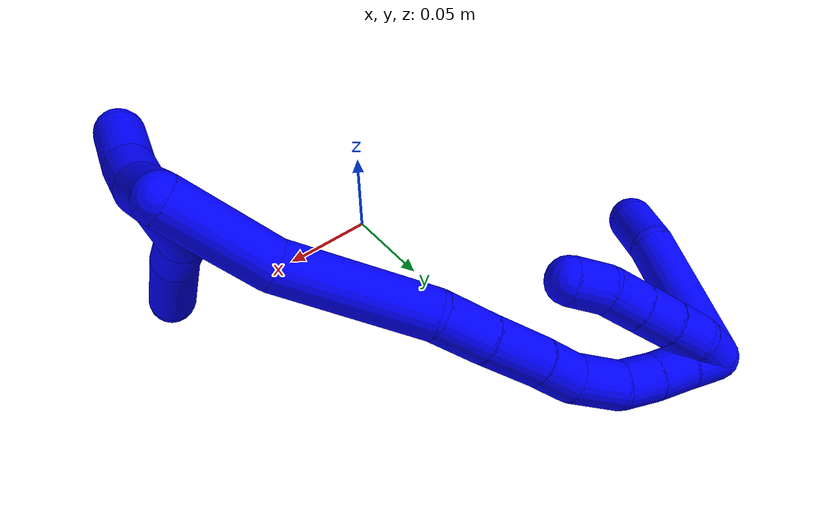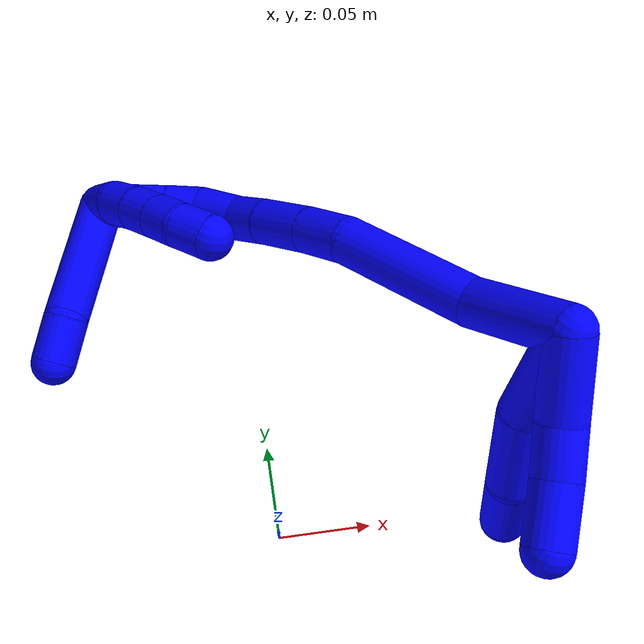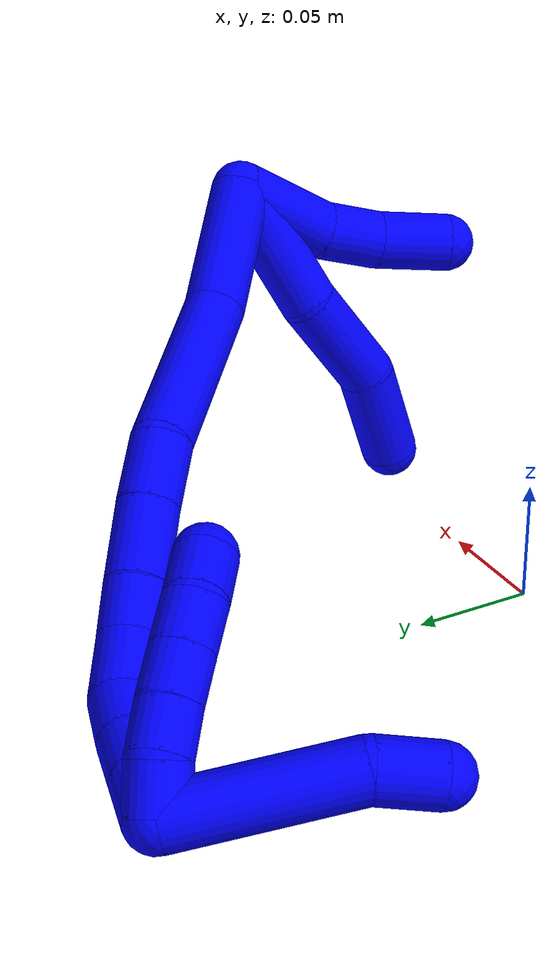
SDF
<sdf version="1.7">
 <world name="default">
  <model name="1">
   <static>0</static>
   <link name="1">
    <collision name="collision-cylinder-e_1_2_8">
     <pose>0.001882 0.003554 -0.028335 -3.01681 0.065812 -0.969933</pose>
     <geometry><cylinder><radius>0.0125</radius><length>0.057239</length></cylinder></geometry>
     <surface>
      <friction><ode><mu>1.16</mu><mu2>1.16</mu2><slip1>0</slip1><slip2>0</slip2></ode></friction>
      <contact><ode><kp>1e+06</kp><kd>1</kd><max_vel>0</max_vel><min_depth>0.001</min_depth></ode></contact>
     </surface>
    </collision>
    <visual name="visual-cylinder-e_1_2_8">
     <pose>0.001882 0.003554 -0.028335 -3.01681 0.065812 -0.969933</pose>
     <geometry><cylinder><radius>0.0125</radius><length>0.057239</length></cylinder></geometry>
     <material><ambient>0 0 1 1</ambient></material>
    </visual>
    <collision name="collision-cylinder-e_2_8_9">
     <pose>0.009485 0.005816 -0.079765 3.08572 0.242459 2.69062</pose>
     <geometry><cylinder><radius>0.0125</radius><length>0.047654</length></cylinder></geometry>
     <surface>
      <friction><ode><mu>1.16</mu><mu2>1.16</mu2><slip1>0</slip1><slip2>0</slip2></ode></friction>
      <contact><ode><kp>1e+06</kp><kd>1</kd><max_vel>0</max_vel><min_depth>0.001</min_depth></ode></contact>
     </surface>
    </collision>
    <visual name="visual-cylinder-e_2_8_9">
     <pose>0.009485 0.005816 -0.079765 3.08572 0.242459 2.69062</pose>
     <geometry><cylinder><radius>0.0125</radius><length>0.047654</length></cylinder></geometry>
     <material><ambient>0 0 1 1</ambient></material>
    </visual>
    <collision name="collision-cylinder-e_3_9_6">
     <pose>0.023561 0.009497 -0.123209 -2.90194 0.379489 -2.02164</pose>
     <geometry><cylinder><radius>0.0125</radius><length>0.045107</length></cylinder></geometry>
     <surface>
      <friction><ode><mu>1.16</mu><mu2>1.16</mu2><slip1>0</slip1><slip2>0</slip2></ode></friction>
      <contact><ode><kp>1e+06</kp><kd>1</kd><max_vel>0</max_vel><min_depth>0.001</min_depth></ode></contact>
     </surface>
    </collision>
    <visual name="visual-cylinder-e_3_9_6">
     <pose>0.023561 0.009497 -0.123209 -2.90194 0.379489 -2.02164</pose>
     <geometry><cylinder><radius>0.0125</radius><length>0.045107</length></cylinder></geometry>
     <material><ambient>0 0 1 1</ambient></material>
    </visual>
    <collision name="collision-cylinder-e_1_2_10">
     <pose>0.002536 -0.00901 -0.019284 2.70452 0.118575 0.522337</pose>
     <geometry><cylinder><radius>0.0125</radius><length>0.042871</length></cylinder></geometry>
     <surface>
      <friction><ode><mu>1.16</mu><mu2>1.16</mu2><slip1>0</slip1><slip2>0</slip2></ode></friction>
      <contact><ode><kp>1e+06</kp><kd>1</kd><max_vel>0</max_vel><min_depth>0.001</min_depth></ode></contact>
     </surface>
    </collision>
    <visual name="visual-cylinder-e_1_2_10">
     <pose>0.002536 -0.00901 -0.019284 2.70452 0.118575 0.522337</pose>
     <geometry><cylinder><radius>0.0125</radius><length>0.042871</length></cylinder></geometry>
     <material><ambient>0 0 1 1</ambient></material>
    </visual>
    <collision name="collision-cylinder-e_2_10_11">
     <pose>0.004616 -0.026137 -0.048638 2.46319 -0.035195 -0.099675</pose>
     <geometry><cylinder><radius>0.0125</radius><length>0.025886</length></cylinder></geometry>
     <surface>
      <friction><ode><mu>1.16</mu><mu2>1.16</mu2><slip1>0</slip1><slip2>0</slip2></ode></friction>
      <contact><ode><kp>1e+06</kp><kd>1</kd><max_vel>0</max_vel><min_depth>0.001</min_depth></ode></contact>
     </surface>
    </collision>
    <visual name="visual-cylinder-e_2_10_11">
     <pose>0.004616 -0.026137 -0.048638 2.46319 -0.035195 -0.099675</pose>
     <geometry><cylinder><radius>0.0125</radius><length>0.025886</length></cylinder></geometry>
     <material><ambient>0 0 1 1</ambient></material>
    </visual>
    <collision name="collision-cylinder-e_3_11_5">
     <pose>0.001572 -0.045377 -0.069368 2.33486 -0.166474 -0.386117</pose>
     <geometry><cylinder><radius>0.0125</radius><length>0.031244</length></cylinder></geometry>
     <surface>
      <friction><ode><mu>1.16</mu><mu2>1.16</mu2><slip1>0</slip1><slip2>0</slip2></ode></friction>
      <contact><ode><kp>1e+06</kp><kd>1</kd><max_vel>0</max_vel><min_depth>0.001</min_depth></ode></contact>
     </surface>
    </collision>
    <visual name="visual-cylinder-e_3_11_5">
     <pose>0.001572 -0.045377 -0.069368 2.33486 -0.166474 -0.386117</pose>
     <geometry><cylinder><radius>0.0125</radius><length>0.031244</length></cylinder></geometry>
     <material><ambient>0 0 1 1</ambient></material>
    </visual>
    <collision name="collision-cylinder-e_1_2_12">
     <pose>-0.010447 0.023293 -0.011432 -2.02704 -0.382771 0.6029</pose>
     <geometry><cylinder><radius>0.0125</radius><length>0.055943</length></cylinder></geometry>
     <surface>
      <friction><ode><mu>1.16</mu><mu2>1.16</mu2><slip1>0</slip1><slip2>0</slip2></ode></friction>
      <contact><ode><kp>1e+06</kp><kd>1</kd><max_vel>0</max_vel><min_depth>0.001</min_depth></ode></contact>
     </surface>
    </collision>
    <visual name="visual-cylinder-e_1_2_12">
     <pose>-0.010447 0.023293 -0.011432 -2.02704 -0.382771 0.6029</pose>
     <geometry><cylinder><radius>0.0125</radius><length>0.055943</length></cylinder></geometry>
     <material><ambient>0 0 1 1</ambient></material>
    </visual>
    <collision name="collision-cylinder-e_2_12_13">
     <pose>-0.042959 0.076684 -0.0282 -1.74626 -0.625224 0.735979</pose>
     <geometry><cylinder><radius>0.0125</radius><length>0.075398</length></cylinder></geometry>
     <surface>
      <friction><ode><mu>1.16</mu><mu2>1.16</mu2><slip1>0</slip1><slip2>0</slip2></ode></friction>
      <contact><ode><kp>1e+06</kp><kd>1</kd><max_vel>0</max_vel><min_depth>0.001</min_depth></ode></contact>
     </surface>
    </collision>
    <visual name="visual-cylinder-e_2_12_13">
     <pose>-0.042959 0.076684 -0.0282 -1.74626 -0.625224 0.735979</pose>
     <geometry><cylinder><radius>0.0125</radius><length>0.075398</length></cylinder></geometry>
     <material><ambient>0 0 1 1</ambient></material>
    </visual>
    <collision name="collision-cylinder-e_3_13_14">
     <pose>-0.071386 0.118078 -0.038792 -2.00635 -0.472196 0.721601</pose>
     <geometry><cylinder><radius>0.0125</radius><length>0.02798</length></cylinder></geometry>
     <surface>
      <friction><ode><mu>1.16</mu><mu2>1.16</mu2><slip1>0</slip1><slip2>0</slip2></ode></friction>
      <contact><ode><kp>1e+06</kp><kd>1</kd><max_vel>0</max_vel><min_depth>0.001</min_depth></ode></contact>
     </surface>
    </collision>
    <visual name="visual-cylinder-e_3_13_14">
     <pose>-0.071386 0.118078 -0.038792 -2.00635 -0.472196 0.721601</pose>
     <geometry><cylinder><radius>0.0125</radius><length>0.02798</length></cylinder></geometry>
     <material><ambient>0 0 1 1</ambient></material>
    </visual>
    <collision name="collision-cylinder-e_4_14_15">
     <pose>-0.085334 0.141706 -0.050606 -2.05947 -0.497488 0.799888</pose>
     <geometry><cylinder><radius>0.0125</radius><length>0.031787</length></cylinder></geometry>
     <surface>
      <friction><ode><mu>1.16</mu><mu2>1.16</mu2><slip1>0</slip1><slip2>0</slip2></ode></friction>
      <contact><ode><kp>1e+06</kp><kd>1</kd><max_vel>0</max_vel><min_depth>0.001</min_depth></ode></contact>
     </surface>
    </collision>
    <visual name="visual-cylinder-e_4_14_15">
     <pose>-0.085334 0.141706 -0.050606 -2.05947 -0.497488 0.799888</pose>
     <geometry><cylinder><radius>0.0125</radius><length>0.031787</length></cylinder></geometry>
     <material><ambient>0 0 1 1</ambient></material>
    </visual>
    <collision name="collision-cylinder-e_5_15_16">
     <pose>-0.097628 0.162544 -0.062297 -2.11385 -0.442676 0.7587</pose>
     <geometry><cylinder><radius>0.0125</radius><length>0.02199</length></cylinder></geometry>
     <surface>
      <friction><ode><mu>1.16</mu><mu2>1.16</mu2><slip1>0</slip1><slip2>0</slip2></ode></friction>
      <contact><ode><kp>1e+06</kp><kd>1</kd><max_vel>0</max_vel><min_depth>0.001</min_depth></ode></contact>
     </surface>
    </collision>
    <visual name="visual-cylinder-e_5_15_16">
     <pose>-0.097628 0.162544 -0.062297 -2.11385 -0.442676 0.7587</pose>
     <geometry><cylinder><radius>0.0125</radius><length>0.02199</length></cylinder></geometry>
     <material><ambient>0 0 1 1</ambient></material>
    </visual>
    <collision name="collision-cylinder-e_6_16_17">
     <pose>-0.111158 0.180295 -0.071188 -1.95685 -0.7238 1.02481</pose>
     <geometry><cylinder><radius>0.0125</radius><length>0.026636</length></cylinder></geometry>
     <surface>
      <friction><ode><mu>1.16</mu><mu2>1.16</mu2><slip1>0</slip1><slip2>0</slip2></ode></friction>
      <contact><ode><kp>1e+06</kp><kd>1</kd><max_vel>0</max_vel><min_depth>0.001</min_depth></ode></contact>
     </surface>
    </collision>
    <visual name="visual-cylinder-e_6_16_17">
     <pose>-0.111158 0.180295 -0.071188 -1.95685 -0.7238 1.02481</pose>
     <geometry><cylinder><radius>0.0125</radius><length>0.026636</length></cylinder></geometry>
     <material><ambient>0 0 1 1</ambient></material>
    </visual>
    <collision name="collision-cylinder-e_7_17_18">
     <pose>-0.128654 0.193685 -0.077929 -2.19457 -1.03877 1.68018</pose>
     <geometry><cylinder><radius>0.0125</radius><length>0.020136</length></cylinder></geometry>
     <surface>
      <friction><ode><mu>1.16</mu><mu2>1.16</mu2><slip1>0</slip1><slip2>0</slip2></ode></friction>
      <contact><ode><kp>1e+06</kp><kd>1</kd><max_vel>0</max_vel><min_depth>0.001</min_depth></ode></contact>
     </surface>
    </collision>
    <visual name="visual-cylinder-e_7_17_18">
     <pose>-0.128654 0.193685 -0.077929 -2.19457 -1.03877 1.68018</pose>
     <geometry><cylinder><radius>0.0125</radius><length>0.020136</length></cylinder></geometry>
     <material><ambient>0 0 1 1</ambient></material>
    </visual>
    <collision name="collision-cylinder-e_8_18_19">
     <pose>-0.14637 0.201196 -0.083665 -2.25642 -1.12242 1.84957</pose>
     <geometry><cylinder><radius>0.0125</radius><length>0.020062</length></cylinder></geometry>
     <surface>
      <friction><ode><mu>1.16</mu><mu2>1.16</mu2><slip1>0</slip1><slip2>0</slip2></ode></friction>
      <contact><ode><kp>1e+06</kp><kd>1</kd><max_vel>0</max_vel><min_depth>0.001</min_depth></ode></contact>
     </surface>
    </collision>
    <visual name="visual-cylinder-e_8_18_19">
     <pose>-0.14637 0.201196 -0.083665 -2.25642 -1.12242 1.84957</pose>
     <geometry><cylinder><radius>0.0125</radius><length>0.020062</length></cylinder></geometry>
     <material><ambient>0 0 1 1</ambient></material>
    </visual>
    <collision name="collision-cylinder-e_9_19_1">
     <pose>-0.164157 0.20815 -0.089779 -2.32341 -1.05882 1.86622</pose>
     <geometry><cylinder><radius>0.0125</radius><length>0.020069</length></cylinder></geometry>
     <surface>
      <friction><ode><mu>1.16</mu><mu2>1.16</mu2><slip1>0</slip1><slip2>0</slip2></ode></friction>
      <contact><ode><kp>1e+06</kp><kd>1</kd><max_vel>0</max_vel><min_depth>0.001</min_depth></ode></contact>
     </surface>
    </collision>
    <visual name="visual-cylinder-e_9_19_1">
     <pose>-0.164157 0.20815 -0.089779 -2.32341 -1.05882 1.86622</pose>
     <geometry><cylinder><radius>0.0125</radius><length>0.020069</length></cylinder></geometry>
     <material><ambient>0 0 1 1</ambient></material>
    </visual>
    <collision name="collision-cylinder-e_1_1_20">
     <pose>-0.170291 0.204403 -0.086865 0.863218 0.264461 0.122365</pose>
     <geometry><cylinder><radius>0.0125</radius><length>0.02</length></cylinder></geometry>
     <surface>
      <friction><ode><mu>1.16</mu><mu2>1.16</mu2><slip1>0</slip1><slip2>0</slip2></ode></friction>
      <contact><ode><kp>1e+06</kp><kd>1</kd><max_vel>0</max_vel><min_depth>0.001</min_depth></ode></contact>
     </surface>
    </collision>
    <visual name="visual-cylinder-e_1_1_20">
     <pose>-0.170291 0.204403 -0.086865 0.863218 0.264461 0.122365</pose>
     <geometry><cylinder><radius>0.0125</radius><length>0.02</length></cylinder></geometry>
     <material><ambient>0 0 1 1</ambient></material>
    </visual>
    <collision name="collision-cylinder-e_2_20_21">
     <pose>-0.16324 0.189011 -0.076668 1.11764 0.459705 0.290567</pose>
     <geometry><cylinder><radius>0.0125</radius><length>0.02</length></cylinder></geometry>
     <surface>
      <friction><ode><mu>1.16</mu><mu2>1.16</mu2><slip1>0</slip1><slip2>0</slip2></ode></friction>
      <contact><ode><kp>1e+06</kp><kd>1</kd><max_vel>0</max_vel><min_depth>0.001</min_depth></ode></contact>
     </surface>
    </collision>
    <visual name="visual-cylinder-e_2_20_21">
     <pose>-0.16324 0.189011 -0.076668 1.11764 0.459705 0.290567</pose>
     <geometry><cylinder><radius>0.0125</radius><length>0.02</length></cylinder></geometry>
     <material><ambient>0 0 1 1</ambient></material>
    </visual>
    <collision name="collision-cylinder-e_3_21_22">
     <pose>-0.154304 0.172658 -0.069436 1.1913 0.466665 0.319416</pose>
     <geometry><cylinder><radius>0.0125</radius><length>0.02</length></cylinder></geometry>
     <surface>
      <friction><ode><mu>1.16</mu><mu2>1.16</mu2><slip1>0</slip1><slip2>0</slip2></ode></friction>
      <contact><ode><kp>1e+06</kp><kd>1</kd><max_vel>0</max_vel><min_depth>0.001</min_depth></ode></contact>
     </surface>
    </collision>
    <visual name="visual-cylinder-e_3_21_22">
     <pose>-0.154304 0.172658 -0.069436 1.1913 0.466665 0.319416</pose>
     <geometry><cylinder><radius>0.0125</radius><length>0.02</length></cylinder></geometry>
     <material><ambient>0 0 1 1</ambient></material>
    </visual>
    <collision name="collision-cylinder-e_4_22_23">
     <pose>-0.145328 0.156012 -0.062929 1.20508 0.464161 0.322321</pose>
     <geometry><cylinder><radius>0.0125</radius><length>0.02</length></cylinder></geometry>
     <surface>
      <friction><ode><mu>1.16</mu><mu2>1.16</mu2><slip1>0</slip1><slip2>0</slip2></ode></friction>
      <contact><ode><kp>1e+06</kp><kd>1</kd><max_vel>0</max_vel><min_depth>0.001</min_depth></ode></contact>
     </surface>
    </collision>
    <visual name="visual-cylinder-e_4_22_23">
     <pose>-0.145328 0.156012 -0.062929 1.20508 0.464161 0.322321</pose>
     <geometry><cylinder><radius>0.0125</radius><length>0.02</length></cylinder></geometry>
     <material><ambient>0 0 1 1</ambient></material>
    </visual>
    <collision name="collision-cylinder-e_5_23_4">
     <pose>-0.134437 0.140266 -0.057691 1.30161 0.696417 0.539361</pose>
     <geometry><cylinder><radius>0.0125</radius><length>0.02</length></cylinder></geometry>
     <surface>
      <friction><ode><mu>1.16</mu><mu2>1.16</mu2><slip1>0</slip1><slip2>0</slip2></ode></friction>
      <contact><ode><kp>1e+06</kp><kd>1</kd><max_vel>0</max_vel><min_depth>0.001</min_depth></ode></contact>
     </surface>
    </collision>
    <visual name="visual-cylinder-e_5_23_4">
     <pose>-0.134437 0.140266 -0.057691 1.30161 0.696417 0.539361</pose>
     <geometry><cylinder><radius>0.0125</radius><length>0.02</length></cylinder></geometry>
     <material><ambient>0 0 1 1</ambient></material>
    </visual>
    <collision name="collision-cylinder-e_1_1_24">
     <pose>-0.183269 0.180701 -0.110428 2.07902 -0.283854 -0.477047</pose>
     <geometry><cylinder><radius>0.0125</radius><length>0.074017</length></cylinder></geometry>
     <surface>
      <friction><ode><mu>1.16</mu><mu2>1.16</mu2><slip1>0</slip1><slip2>0</slip2></ode></friction>
      <contact><ode><kp>1e+06</kp><kd>1</kd><max_vel>0</max_vel><min_depth>0.001</min_depth></ode></contact>
     </surface>
    </collision>
    <visual name="visual-cylinder-e_1_1_24">
     <pose>-0.183269 0.180701 -0.110428 2.07902 -0.283854 -0.477047</pose>
     <geometry><cylinder><radius>0.0125</radius><length>0.074017</length></cylinder></geometry>
     <material><ambient>0 0 1 1</ambient></material>
    </visual>
    <collision name="collision-cylinder-e_2_24_3">
     <pose>-0.196634 0.141361 -0.137247 2.42493 -0.23301 -0.605792</pose>
     <geometry><cylinder><radius>0.0125</radius><length>0.025983</length></cylinder></geometry>
     <surface>
      <friction><ode><mu>1.16</mu><mu2>1.16</mu2><slip1>0</slip1><slip2>0</slip2></ode></friction>
      <contact><ode><kp>1e+06</kp><kd>1</kd><max_vel>0</max_vel><min_depth>0.001</min_depth></ode></contact>
     </surface>
    </collision>
    <visual name="visual-cylinder-e_2_24_3">
     <pose>-0.196634 0.141361 -0.137247 2.42493 -0.23301 -0.605792</pose>
     <geometry><cylinder><radius>0.0125</radius><length>0.025983</length></cylinder></geometry>
     <material><ambient>0 0 1 1</ambient></material>
    </visual>
    <collision name="collision-sphere-3">
     <pose>-0.199634 0.133058 -0.146778 0 -0 0</pose>
     <geometry><sphere><radius>0.0125</radius></sphere></geometry>
     <surface>
      <friction><ode><mu>1.16</mu><mu2>1.16</mu2><slip1>0</slip1><slip2>0</slip2></ode></friction>
      <contact><ode><kp>1e+06</kp><kd>1</kd><max_vel>0</max_vel><min_depth>0.001</min_depth></ode></contact>
     </surface>
    </collision>
    <visual name="visual-sphere-3">
     <pose>-0.199634 0.133058 -0.146778 0 -0 0</pose>
     <geometry><sphere><radius>0.0125</radius></sphere></geometry>
     <material><ambient>0 0 1 1</ambient></material>
    </visual>
    <collision name="collision-sphere-24">
     <pose>-0.193634 0.149664 -0.127716 0 -0 0</pose>
     <geometry><sphere><radius>0.0125</radius></sphere></geometry>
     <surface>
      <friction><ode><mu>1.16</mu><mu2>1.16</mu2><slip1>0</slip1><slip2>0</slip2></ode></friction>
      <contact><ode><kp>1e+06</kp><kd>1</kd><max_vel>0</max_vel><min_depth>0.001</min_depth></ode></contact>
     </surface>
    </collision>
    <visual name="visual-sphere-24">
     <pose>-0.193634 0.149664 -0.127716 0 -0 0</pose>
     <geometry><sphere><radius>0.0125</radius></sphere></geometry>
     <material><ambient>0 0 1 1</ambient></material>
    </visual>
    <collision name="collision-sphere-4">
     <pose>-0.128022 0.132871 -0.055651 0 -0 0</pose>
     <geometry><sphere><radius>0.0125</radius></sphere></geometry>
     <surface>
      <friction><ode><mu>1.16</mu><mu2>1.16</mu2><slip1>0</slip1><slip2>0</slip2></ode></friction>
      <contact><ode><kp>1e+06</kp><kd>1</kd><max_vel>0</max_vel><min_depth>0.001</min_depth></ode></contact>
     </surface>
    </collision>
    <visual name="visual-sphere-4">
     <pose>-0.128022 0.132871 -0.055651 0 -0 0</pose>
     <geometry><sphere><radius>0.0125</radius></sphere></geometry>
     <material><ambient>0 0 1 1</ambient></material>
    </visual>
    <collision name="collision-sphere-23">
     <pose>-0.140852 0.147661 -0.059732 0 -0 0</pose>
     <geometry><sphere><radius>0.0125</radius></sphere></geometry>
     <surface>
      <friction><ode><mu>1.16</mu><mu2>1.16</mu2><slip1>0</slip1><slip2>0</slip2></ode></friction>
      <contact><ode><kp>1e+06</kp><kd>1</kd><max_vel>0</max_vel><min_depth>0.001</min_depth></ode></contact>
     </surface>
    </collision>
    <visual name="visual-sphere-23">
     <pose>-0.140852 0.147661 -0.059732 0 -0 0</pose>
     <geometry><sphere><radius>0.0125</radius></sphere></geometry>
     <material><ambient>0 0 1 1</ambient></material>
    </visual>
    <collision name="collision-sphere-22">
     <pose>-0.149805 0.164363 -0.066127 0 -0 0</pose>
     <geometry><sphere><radius>0.0125</radius></sphere></geometry>
     <surface>
      <friction><ode><mu>1.16</mu><mu2>1.16</mu2><slip1>0</slip1><slip2>0</slip2></ode></friction>
      <contact><ode><kp>1e+06</kp><kd>1</kd><max_vel>0</max_vel><min_depth>0.001</min_depth></ode></contact>
     </surface>
    </collision>
    <visual name="visual-sphere-22">
     <pose>-0.149805 0.164363 -0.066127 0 -0 0</pose>
     <geometry><sphere><radius>0.0125</radius></sphere></geometry>
     <material><ambient>0 0 1 1</ambient></material>
    </visual>
    <collision name="collision-sphere-21">
     <pose>-0.158803 0.180953 -0.072744 0 -0 0</pose>
     <geometry><sphere><radius>0.0125</radius></sphere></geometry>
     <surface>
      <friction><ode><mu>1.16</mu><mu2>1.16</mu2><slip1>0</slip1><slip2>0</slip2></ode></friction>
      <contact><ode><kp>1e+06</kp><kd>1</kd><max_vel>0</max_vel><min_depth>0.001</min_depth></ode></contact>
     </surface>
    </collision>
    <visual name="visual-sphere-21">
     <pose>-0.158803 0.180953 -0.072744 0 -0 0</pose>
     <geometry><sphere><radius>0.0125</radius></sphere></geometry>
     <material><ambient>0 0 1 1</ambient></material>
    </visual>
    <collision name="collision-sphere-20">
     <pose>-0.167677 0.197068 -0.080591 0 -0 0</pose>
     <geometry><sphere><radius>0.0125</radius></sphere></geometry>
     <surface>
      <friction><ode><mu>1.16</mu><mu2>1.16</mu2><slip1>0</slip1><slip2>0</slip2></ode></friction>
      <contact><ode><kp>1e+06</kp><kd>1</kd><max_vel>0</max_vel><min_depth>0.001</min_depth></ode></contact>
     </surface>
    </collision>
    <visual name="visual-sphere-20">
     <pose>-0.167677 0.197068 -0.080591 0 -0 0</pose>
     <geometry><sphere><radius>0.0125</radius></sphere></geometry>
     <material><ambient>0 0 1 1</ambient></material>
    </visual>
    <collision name="collision-sphere-11">
     <pose>0.004161 -0.034254 -0.058709 0 -0 0</pose>
     <geometry><sphere><radius>0.0125</radius></sphere></geometry>
     <surface>
      <friction><ode><mu>1.16</mu><mu2>1.16</mu2><slip1>0</slip1><slip2>0</slip2></ode></friction>
      <contact><ode><kp>1e+06</kp><kd>1</kd><max_vel>0</max_vel><min_depth>0.001</min_depth></ode></contact>
     </surface>
    </collision>
    <visual name="visual-sphere-11">
     <pose>0.004161 -0.034254 -0.058709 0 -0 0</pose>
     <geometry><sphere><radius>0.0125</radius></sphere></geometry>
     <material><ambient>0 0 1 1</ambient></material>
    </visual>
    <collision name="collision-sphere-10">
     <pose>0.005071 -0.018019 -0.038568 0 -0 0</pose>
     <geometry><sphere><radius>0.0125</radius></sphere></geometry>
     <surface>
      <friction><ode><mu>1.16</mu><mu2>1.16</mu2><slip1>0</slip1><slip2>0</slip2></ode></friction>
      <contact><ode><kp>1e+06</kp><kd>1</kd><max_vel>0</max_vel><min_depth>0.001</min_depth></ode></contact>
     </surface>
    </collision>
    <visual name="visual-sphere-10">
     <pose>0.005071 -0.018019 -0.038568 0 -0 0</pose>
     <geometry><sphere><radius>0.0125</radius></sphere></geometry>
     <material><ambient>0 0 1 1</ambient></material>
    </visual>
    <collision name="collision-sphere-6">
     <pose>0.031915 0.01447 -0.143559 0 -0 0</pose>
     <geometry><sphere><radius>0.0125</radius></sphere></geometry>
     <surface>
      <friction><ode><mu>1.16</mu><mu2>1.16</mu2><slip1>0</slip1><slip2>0</slip2></ode></friction>
      <contact><ode><kp>1e+06</kp><kd>1</kd><max_vel>0</max_vel><min_depth>0.001</min_depth></ode></contact>
     </surface>
    </collision>
    <visual name="visual-sphere-6">
     <pose>0.031915 0.01447 -0.143559 0 -0 0</pose>
     <geometry><sphere><radius>0.0125</radius></sphere></geometry>
     <material><ambient>0 0 1 1</ambient></material>
    </visual>
    <collision name="collision-sphere-9">
     <pose>0.015206 0.004525 -0.102859 0 -0 0</pose>
     <geometry><sphere><radius>0.0125</radius></sphere></geometry>
     <surface>
      <friction><ode><mu>1.16</mu><mu2>1.16</mu2><slip1>0</slip1><slip2>0</slip2></ode></friction>
      <contact><ode><kp>1e+06</kp><kd>1</kd><max_vel>0</max_vel><min_depth>0.001</min_depth></ode></contact>
     </surface>
    </collision>
    <visual name="visual-sphere-9">
     <pose>0.015206 0.004525 -0.102859 0 -0 0</pose>
     <geometry><sphere><radius>0.0125</radius></sphere></geometry>
     <material><ambient>0 0 1 1</ambient></material>
    </visual>
    <collision name="collision-sphere-2">
     <geometry><sphere><radius>0.0125</radius></sphere></geometry>
     <surface>
      <friction><ode><mu>1.16</mu><mu2>1.16</mu2><slip1>0</slip1><slip2>0</slip2></ode></friction>
      <contact><ode><kp>1e+06</kp><kd>1</kd><max_vel>0</max_vel><min_depth>0.001</min_depth></ode></contact>
     </surface>
    </collision>
    <visual name="visual-sphere-2">
     <geometry><sphere><radius>0.0125</radius></sphere></geometry>
     <material><ambient>0 0 1 1</ambient></material>
    </visual>
    <collision name="collision-sphere-19">
     <pose>-0.155409 0.204562 -0.086419 0 -0 0</pose>
     <geometry><sphere><radius>0.0125</radius></sphere></geometry>
     <surface>
      <friction><ode><mu>1.16</mu><mu2>1.16</mu2><slip1>0</slip1><slip2>0</slip2></ode></friction>
      <contact><ode><kp>1e+06</kp><kd>1</kd><max_vel>0</max_vel><min_depth>0.001</min_depth></ode></contact>
     </surface>
    </collision>
    <visual name="visual-sphere-19">
     <pose>-0.155409 0.204562 -0.086419 0 -0 0</pose>
     <geometry><sphere><radius>0.0125</radius></sphere></geometry>
     <material><ambient>0 0 1 1</ambient></material>
    </visual>
    <collision name="collision-sphere-8">
     <pose>0.003764 0.007108 -0.056671 0 -0 0</pose>
     <geometry><sphere><radius>0.0125</radius></sphere></geometry>
     <surface>
      <friction><ode><mu>1.16</mu><mu2>1.16</mu2><slip1>0</slip1><slip2>0</slip2></ode></friction>
      <contact><ode><kp>1e+06</kp><kd>1</kd><max_vel>0</max_vel><min_depth>0.001</min_depth></ode></contact>
     </surface>
    </collision>
    <visual name="visual-sphere-8">
     <pose>0.003764 0.007108 -0.056671 0 -0 0</pose>
     <geometry><sphere><radius>0.0125</radius></sphere></geometry>
     <material><ambient>0 0 1 1</ambient></material>
    </visual>
    <collision name="collision-sphere-5">
     <pose>-0.001017 -0.056501 -0.080027 0 -0 0</pose>
     <geometry><sphere><radius>0.0125</radius></sphere></geometry>
     <surface>
      <friction><ode><mu>1.16</mu><mu2>1.16</mu2><slip1>0</slip1><slip2>0</slip2></ode></friction>
      <contact><ode><kp>1e+06</kp><kd>1</kd><max_vel>0</max_vel><min_depth>0.001</min_depth></ode></contact>
     </surface>
    </collision>
    <visual name="visual-sphere-5">
     <pose>-0.001017 -0.056501 -0.080027 0 -0 0</pose>
     <geometry><sphere><radius>0.0125</radius></sphere></geometry>
     <material><ambient>0 0 1 1</ambient></material>
    </visual>
    <collision name="collision-sphere-12">
     <pose>-0.020894 0.046586 -0.022864 0 -0 0</pose>
     <geometry><sphere><radius>0.0125</radius></sphere></geometry>
     <surface>
      <friction><ode><mu>1.16</mu><mu2>1.16</mu2><slip1>0</slip1><slip2>0</slip2></ode></friction>
      <contact><ode><kp>1e+06</kp><kd>1</kd><max_vel>0</max_vel><min_depth>0.001</min_depth></ode></contact>
     </surface>
    </collision>
    <visual name="visual-sphere-12">
     <pose>-0.020894 0.046586 -0.022864 0 -0 0</pose>
     <geometry><sphere><radius>0.0125</radius></sphere></geometry>
     <material><ambient>0 0 1 1</ambient></material>
    </visual>
    <collision name="collision-sphere-13">
     <pose>-0.065023 0.106782 -0.033536 0 -0 0</pose>
     <geometry><sphere><radius>0.0125</radius></sphere></geometry>
     <surface>
      <friction><ode><mu>1.16</mu><mu2>1.16</mu2><slip1>0</slip1><slip2>0</slip2></ode></friction>
      <contact><ode><kp>1e+06</kp><kd>1</kd><max_vel>0</max_vel><min_depth>0.001</min_depth></ode></contact>
     </surface>
    </collision>
    <visual name="visual-sphere-13">
     <pose>-0.065023 0.106782 -0.033536 0 -0 0</pose>
     <geometry><sphere><radius>0.0125</radius></sphere></geometry>
     <material><ambient>0 0 1 1</ambient></material>
    </visual>
    <collision name="collision-sphere-14">
     <pose>-0.077749 0.129374 -0.044049 0 -0 0</pose>
     <geometry><sphere><radius>0.0125</radius></sphere></geometry>
     <surface>
      <friction><ode><mu>1.16</mu><mu2>1.16</mu2><slip1>0</slip1><slip2>0</slip2></ode></friction>
      <contact><ode><kp>1e+06</kp><kd>1</kd><max_vel>0</max_vel><min_depth>0.001</min_depth></ode></contact>
     </surface>
    </collision>
    <visual name="visual-sphere-14">
     <pose>-0.077749 0.129374 -0.044049 0 -0 0</pose>
     <geometry><sphere><radius>0.0125</radius></sphere></geometry>
     <material><ambient>0 0 1 1</ambient></material>
    </visual>
    <collision name="collision-sphere-15">
     <pose>-0.092919 0.154038 -0.057163 0 -0 0</pose>
     <geometry><sphere><radius>0.0125</radius></sphere></geometry>
     <surface>
      <friction><ode><mu>1.16</mu><mu2>1.16</mu2><slip1>0</slip1><slip2>0</slip2></ode></friction>
      <contact><ode><kp>1e+06</kp><kd>1</kd><max_vel>0</max_vel><min_depth>0.001</min_depth></ode></contact>
     </surface>
    </collision>
    <visual name="visual-sphere-15">
     <pose>-0.092919 0.154038 -0.057163 0 -0 0</pose>
     <geometry><sphere><radius>0.0125</radius></sphere></geometry>
     <material><ambient>0 0 1 1</ambient></material>
    </visual>
    <collision name="collision-sphere-16">
     <pose>-0.102338 0.17105 -0.067431 0 -0 0</pose>
     <geometry><sphere><radius>0.0125</radius></sphere></geometry>
     <surface>
      <friction><ode><mu>1.16</mu><mu2>1.16</mu2><slip1>0</slip1><slip2>0</slip2></ode></friction>
      <contact><ode><kp>1e+06</kp><kd>1</kd><max_vel>0</max_vel><min_depth>0.001</min_depth></ode></contact>
     </surface>
    </collision>
    <visual name="visual-sphere-16">
     <pose>-0.102338 0.17105 -0.067431 0 -0 0</pose>
     <geometry><sphere><radius>0.0125</radius></sphere></geometry>
     <material><ambient>0 0 1 1</ambient></material>
    </visual>
    <collision name="collision-sphere-17">
     <pose>-0.119978 0.18954 -0.074946 0 -0 0</pose>
     <geometry><sphere><radius>0.0125</radius></sphere></geometry>
     <surface>
      <friction><ode><mu>1.16</mu><mu2>1.16</mu2><slip1>0</slip1><slip2>0</slip2></ode></friction>
      <contact><ode><kp>1e+06</kp><kd>1</kd><max_vel>0</max_vel><min_depth>0.001</min_depth></ode></contact>
     </surface>
    </collision>
    <visual name="visual-sphere-17">
     <pose>-0.119978 0.18954 -0.074946 0 -0 0</pose>
     <geometry><sphere><radius>0.0125</radius></sphere></geometry>
     <material><ambient>0 0 1 1</ambient></material>
    </visual>
    <collision name="collision-sphere-18">
     <pose>-0.13733 0.19783 -0.080912 0 -0 0</pose>
     <geometry><sphere><radius>0.0125</radius></sphere></geometry>
     <surface>
      <friction><ode><mu>1.16</mu><mu2>1.16</mu2><slip1>0</slip1><slip2>0</slip2></ode></friction>
      <contact><ode><kp>1e+06</kp><kd>1</kd><max_vel>0</max_vel><min_depth>0.001</min_depth></ode></contact>
     </surface>
    </collision>
    <visual name="visual-sphere-18">
     <pose>-0.13733 0.19783 -0.080912 0 -0 0</pose>
     <geometry><sphere><radius>0.0125</radius></sphere></geometry>
     <material><ambient>0 0 1 1</ambient></material>
    </visual>
    <collision name="collision-sphere-1">
     <pose>-0.172905 0.211738 -0.093139 0 -0 0</pose>
     <geometry><sphere><radius>0.0125</radius></sphere></geometry>
     <surface>
      <friction><ode><mu>1.16</mu><mu2>1.16</mu2><slip1>0</slip1><slip2>0</slip2></ode></friction>
      <contact><ode><kp>1e+06</kp><kd>1</kd><max_vel>0</max_vel><min_depth>0.001</min_depth></ode></contact>
     </surface>
    </collision>
    <visual name="visual-sphere-1">
     <pose>-0.172905 0.211738 -0.093139 0 -0 0</pose>
     <geometry><sphere><radius>0.0125</radius></sphere></geometry>
     <material><ambient>0 0 1 1</ambient></material>
    </visual>
    <inertial>
     <pose>-0.072785 0.090809 -0.06376 0 -0 0</pose>
     <mass>0.75</mass>
     <inertia><ixx>8.9e-05</ixx><ixy>0</ixy><ixz>0</ixz><iyy>5e-06</iyy><iyz>0</iyz><izz>-1e-06</izz></inertia>
    </inertial>
   </link>
   <pose>0.136268 0.059181 0.142631 -0.586776 0.317806 -0.08646</pose>
  </model>
 </world>
</sdf>
